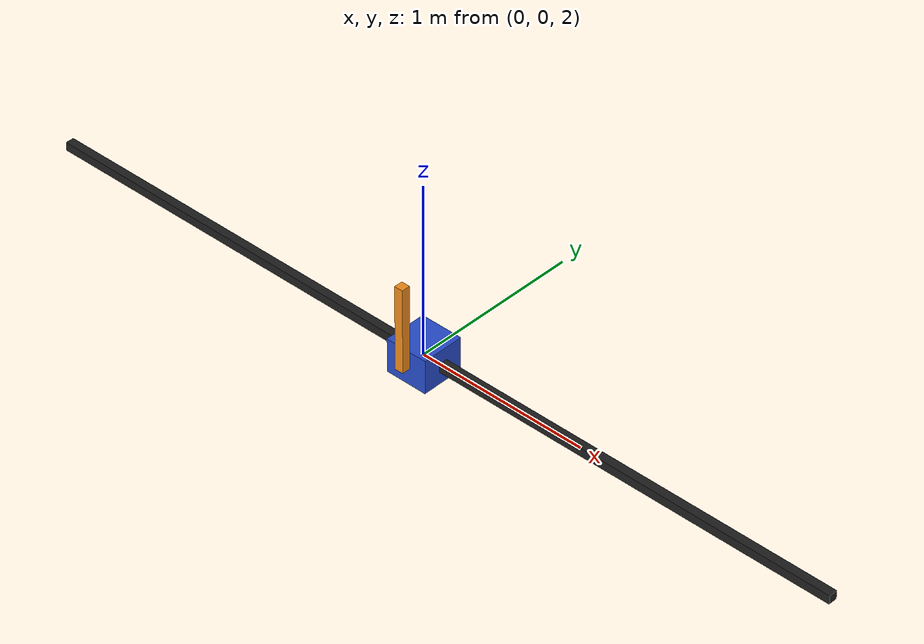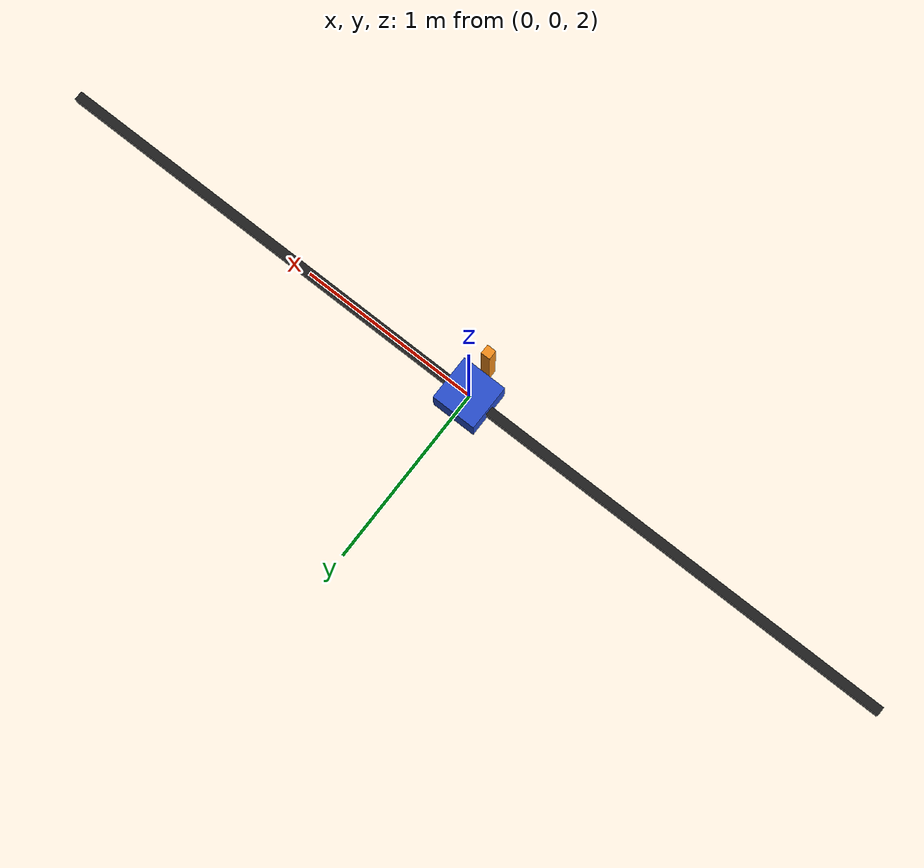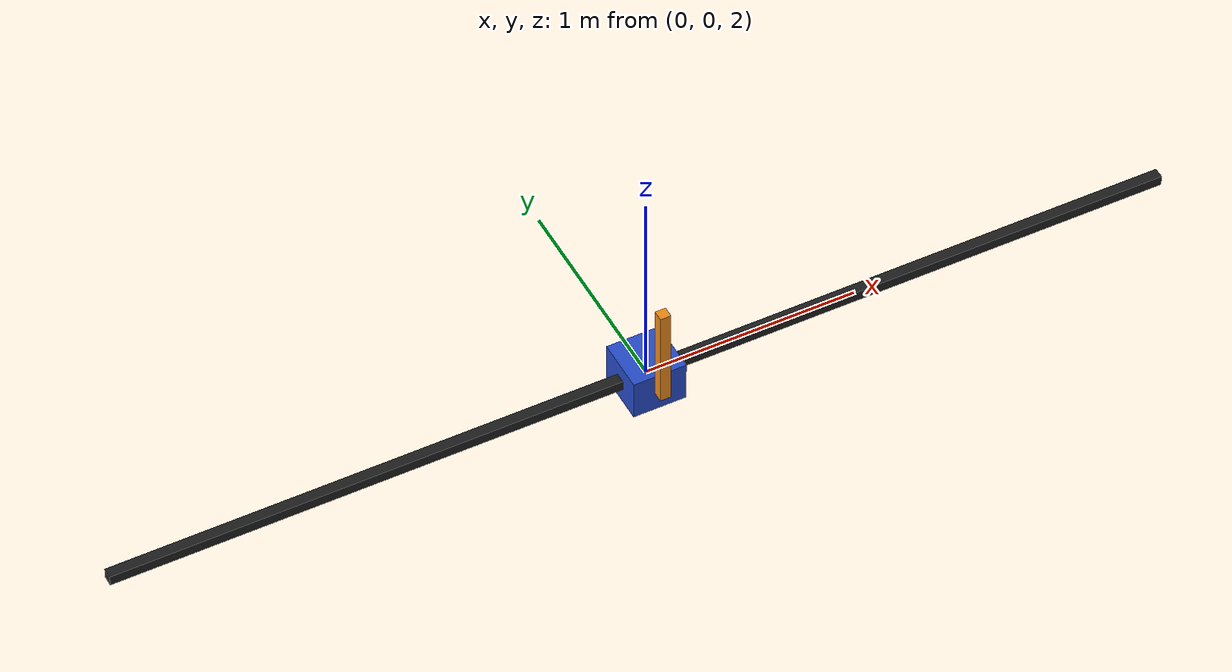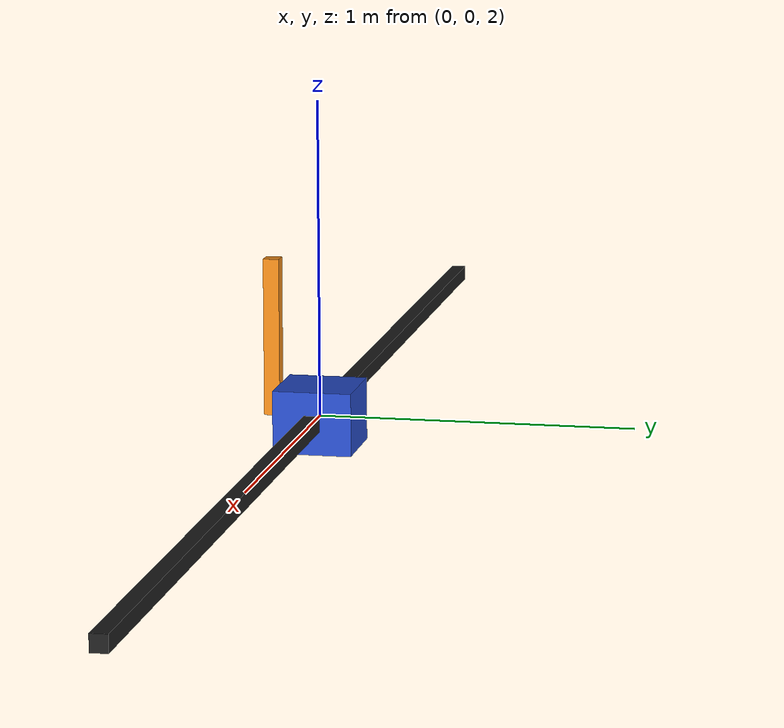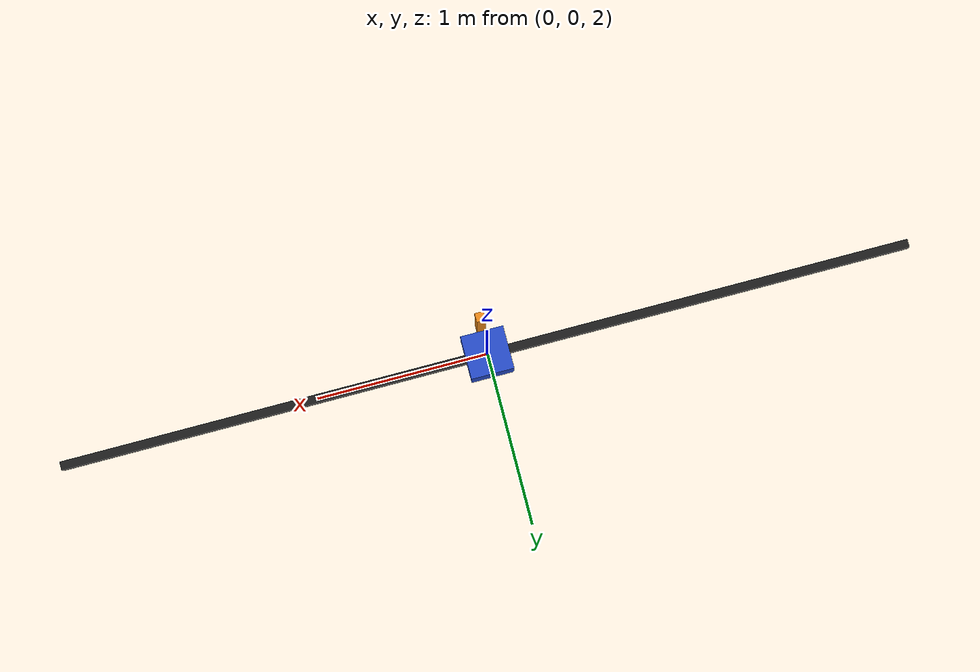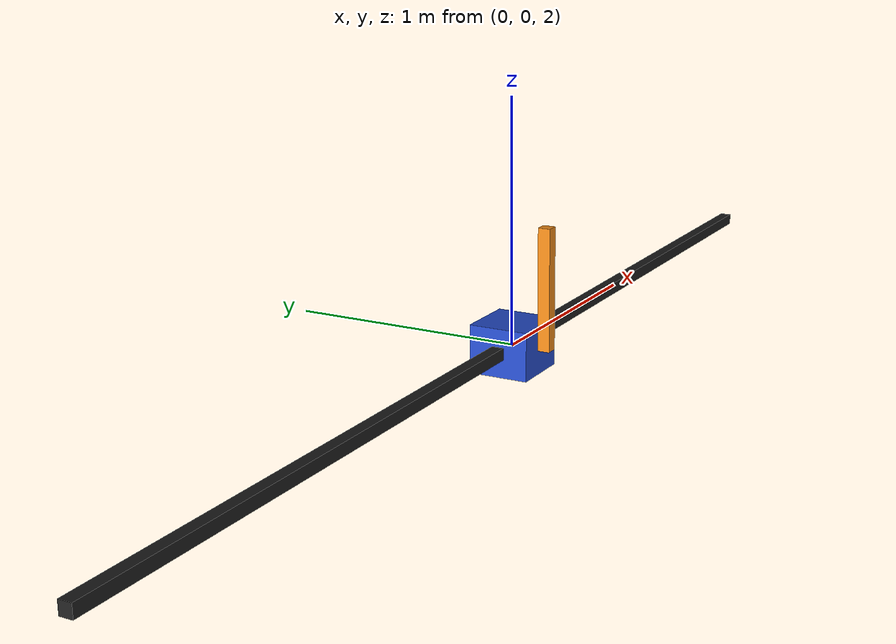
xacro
<?xml version="1.0"?>
<!-- Revolute-Revolute Manipulator -->
<robot name="invpend" xmlns:xacro="http://www.ros.org/wiki/xacro">

  <!-- Constants for robot dimensions -->
  <xacro:property name="PI" value="3.1415926535897931"/>
  <xacro:property name="mass_slider" value="100" /> <!-- arbitrary value for mass -->
  <xacro:property name="mass_cart" value="1.0" /> <!-- arbitrary value for mass -->
  <xacro:property name="mass_pole" value="0.1" /> <!-- arbitrary value for mass -->
  <xacro:property name="width" value="0.25" /> <!-- cart width -->
  <xacro:property name="height" value="0.2" /> <!-- cart height -->
  <xacro:property name="depth" value="0.25" /> <!-- cart depth -->
  <xacro:property name="length_slider" value="5" /> <!-- pole length -->
  <xacro:property name="length_pole" value="0.5" /> <!-- pole length -->
  <xacro:property name="radius" value="0.05" /> <!-- slender bar radius -->

  <!-- Import all Gazebo-customization elements, including Gazebo colors -->
  <xacro:include filename="$(find invpend_description)/urdf/invpend.gazebo" />
  <!-- Import Rviz colors -->
  <xacro:include filename="$(find invpend_description)/urdf/materials.xacro" />

  <!-- Used for fixing robot to Gazebo 'base_link' -->
  <link name="world"/>

  <joint name="fixed" type="fixed">
    <parent link="world"/>
    <child link="slidebar"/>
    <origin xyz="0 0 2"/>
  </joint>

  <!-- Slider Link -->
  <link name="slidebar">
    <visual>
      <origin xyz="0 0 0" rpy="0 0 0"/>
      <geometry>
	<box size="${length_slider} ${radius} ${radius}"/>
      </geometry>
      <material name="black"/>
    </visual>

    <inertial>
      <origin xyz="0 0 0" rpy="0 0 0"/>
      <mass value="${mass_slider}"/>
      <inertia
	  ixx="${mass_slider*length_slider*length_slider/12}" ixy="0.0" ixz="0.0"
	  iyy="0.0" iyz="0.0"
	  izz="${mass_slider*length_slider*length_slider/12}"/>
    </inertial>
  </link>

  <joint name="slider_to_cart" type="prismatic">
    <parent link="slidebar"/>
    <child link="cart"/>
    <origin xyz="0 0 0" rpy="0 0 0"/>
    <axis xyz="1 0 0"/>
    <limit effort="100.0" lower="-2.5" upper="2.5" velocity="1000"/>
    <dynamics damping="0.0001"/>
  </joint>

  <!-- Cart Link -->
  <link name="cart">
    <collision>
      <origin xyz="0 0 0" rpy="0 0 0"/>
      <geometry>
	<box size="${width} ${depth} ${height}"/>
      </geometry>
    </collision>

    <visual>
      <origin xyz="0 0 0" rpy="0 0 0"/>
      <geometry>
	<box size="${width} ${depth} ${height}"/>
      </geometry>
      <material name="blue"/>
    </visual>

    <inertial>
      <origin xyz="0 0 0" rpy="0 0 0"/>
      <mass value="${mass_cart}"/>
      <inertia
	  ixx="${mass_cart*(depth*depth+height*height)/12}" ixy="0.0" ixz="0.0"
	  iyy="${mass_cart*(depth*depth+width*width)/12}" iyz="0.0"
	  izz="${mass_cart*(width*width+height*height)/12}"/>
    </inertial>
  </link>

  <joint name="cart_to_pole" type="revolute">
    <parent link="cart"/>
    <child link="pole"/>
    <origin xyz="0 -0.15 0" rpy="0 0 0"/>
    <axis xyz="0 1 0"/>
    <limit effort="1000.0" lower="${-PI}" upper = "${PI}" velocity="1000.0"/>
  </joint>

  <!-- Pole Link -->
  <link name="pole">
    <collision>
      <origin xyz="0 0 0.25" rpy="0 0 0"/>
      <geometry>
	<box size="${radius} ${radius} ${length_pole}"/>
      </geometry>
    </collision>

    <visual>
      <origin xyz="0 0 0.25" rpy="0 0 0"/>
      <geometry>
	<box size="${radius} ${radius} ${length_pole}"/>
      </geometry>
      <material name="orange"/>
    </visual>

    <inertial>
      <origin xyz="0 0 0.25" rpy="0 0 0"/>
      <mass value="${mass_pole}"/>
      <inertia
	  ixx="${mass_pole*length_pole*length_pole/3}" ixy="0.0" ixz="0.0"
	  iyy="0.0" iyz="0.0"
	  izz="${mass_pole*length_pole*length_pole/3}"/>
    </inertial>
  </link>

  <transmission name="tran1">
    <type>transmission_interface/SimpleTransmission</type>
    <joint name="slider_to_cart">
      <hardwareInterface>hardware_interface/EffortJointInterface</hardwareInterface>
    </joint>
    <actuator name="motor_pris">
      <hardwareInterface>hardware_interface/EffortJointInterface</hardwareInterface>
      <mechanicalReduction>1</mechanicalReduction>
    </actuator>
  </transmission>

  <transmission name="tran2">
    <type>transmission_interface/SimpleTransmission</type>
    <joint name="cart_to_pole">
      <hardwareInterface>hardware_interface/EffortJointInterface</hardwareInterface>
    </joint>
    <actuator name="motor_revo">
      <hardwareInterface>hardware_interface/EffortJointInterface</hardwareInterface>
      <mechanicalReduction>1</mechanicalReduction>
    </actuator>
  </transmission>

</robot>
